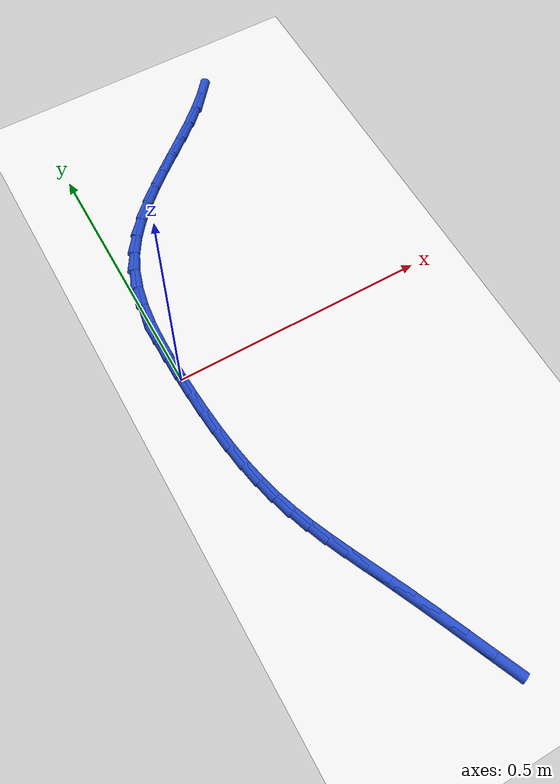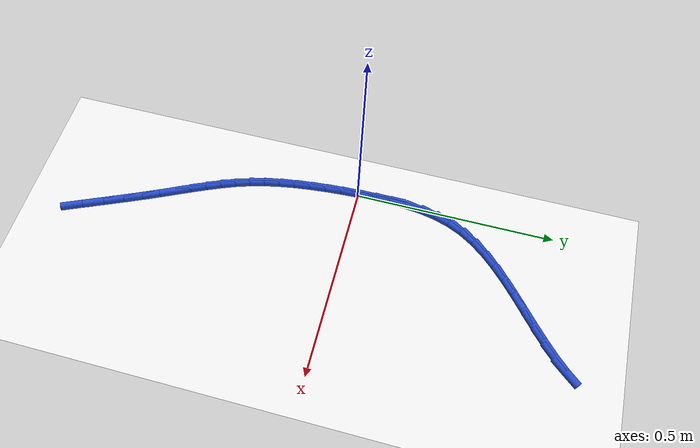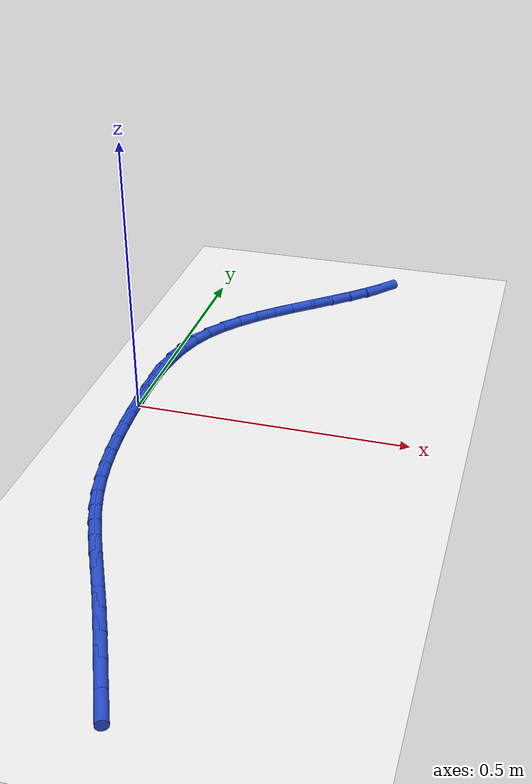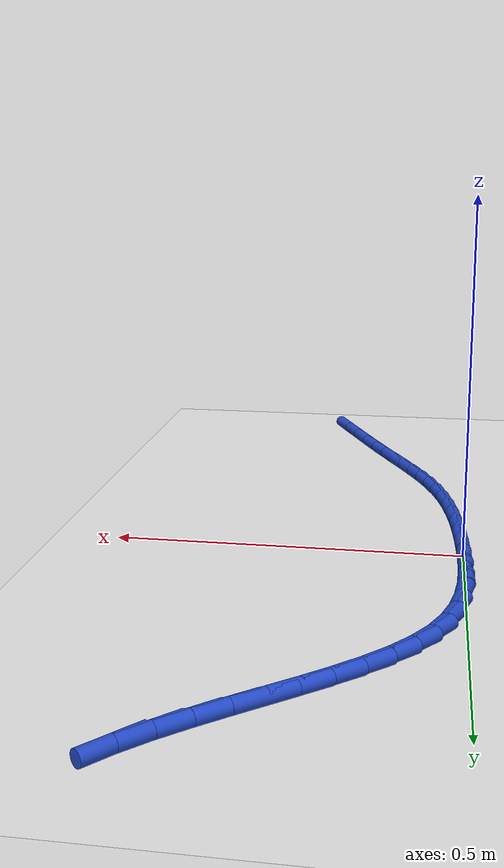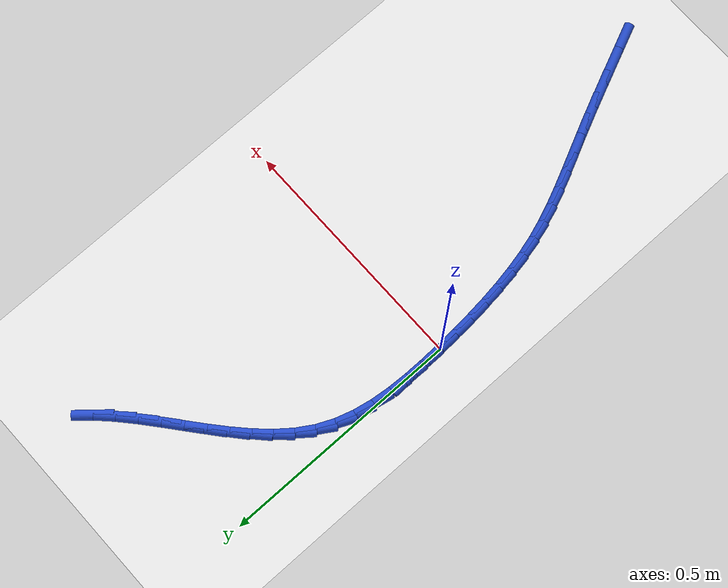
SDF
<sdf version="1.6">
 <world name="default">
  <model name="ground_plane">
   <static>1</static>
   <link name="link">
    <collision name="collision">
     <geometry><plane><normal>0 0 1</normal><size>100 100</size></plane></geometry>
     <surface><friction><ode><mu>100</mu><mu2>50</mu2></ode></friction></surface>
    </collision>
    <visual name="visual">
     <cast_shadows>0</cast_shadows>
     <geometry><plane><normal>0 0 1</normal><size>100 100</size></plane></geometry>
     <material>
      <script><uri>file://media/materials/scripts/gazebo.material</uri><name>Gazebo/WhiteGlow</name></script>
     </material>
    </visual>
   </link>
  </model>
  <model name="line">
   <link name="link_0">
    <pose>8.876905287225068e-18 -3.469446951953614e-17 0.01 0 1.57 -1.5388181777335797</pose>
    <collision name="collision">
     <geometry><cylinder><radius>0.01</radius><length>0.08</length></cylinder></geometry>
    </collision>
    <visual name="visual">
     <material>
      <script><name>Gazebo/Blue</name><uri>file://media/materials/scripts/gazebo.material</uri></script>
     </material>
     <geometry><cylinder><radius>0.01</radius><length>0.08</length></cylinder></geometry>
    </visual>
   </link>
   <link name="link_1">
    <pose>-0.0013342330816965733 0.041709051128966085 0.01 0 1.57 -1.5698637900432821</pose>
    <collision name="collision">
     <geometry><cylinder><radius>0.01</radius><length>0.08</length></cylinder></geometry>
    </collision>
    <visual name="visual">
     <material>
      <script><name>Gazebo/Blue</name><uri>file://media/materials/scripts/gazebo.material</uri></script>
     </material>
     <geometry><cylinder><radius>0.01</radius><length>0.08</length></cylinder></geometry>
    </visual>
   </link>
   <link name="link_2">
    <pose>-0.0013729636116146375 0.0832414825575409 0.01 0 1.57 1.5245017664246117</pose>
    <collision name="collision">
     <geometry><cylinder><radius>0.01</radius><length>0.08</length></cylinder></geometry>
    </collision>
    <visual name="visual">
     <material>
      <script><name>Gazebo/Blue</name><uri>file://media/materials/scripts/gazebo.material</uri></script>
     </material>
     <geometry><cylinder><radius>0.01</radius><length>0.08</length></cylinder></geometry>
    </visual>
   </link>
   <link name="link_3">
    <pose>0.0005268423543587468 0.12424950907540658 0.01 0 1.57 1.459601645572316</pose>
    <collision name="collision">
     <geometry><cylinder><radius>0.01</radius><length>0.08</length></cylinder></geometry>
    </collision>
    <visual name="visual">
     <material>
      <script><name>Gazebo/Blue</name><uri>file://media/materials/scripts/gazebo.material</uri></script>
     </material>
     <geometry><cylinder><radius>0.01</radius><length>0.08</length></cylinder></geometry>
    </visual>
   </link>
   <link name="link_4">
    <pose>0.005008218760336513 0.16438534547224498 0.01 0 1.57 1.3753087487566449</pose>
    <collision name="collision">
     <geometry><cylinder><radius>0.01</radius><length>0.08</length></cylinder></geometry>
    </collision>
    <visual name="visual">
     <material>
      <script><name>Gazebo/Blue</name><uri>file://media/materials/scripts/gazebo.material</uri></script>
     </material>
     <geometry><cylinder><radius>0.01</radius><length>0.08</length></cylinder></geometry>
    </visual>
   </link>
   <link name="link_5">
    <pose>0.012714199550431595 0.20330120653773837 0.01 0 1.57 1.2702955046169055</pose>
    <collision name="collision">
     <geometry><cylinder><radius>0.01</radius><length>0.08</length></cylinder></geometry>
    </collision>
    <visual name="visual">
     <material>
      <script><name>Gazebo/Blue</name><uri>file://media/materials/scripts/gazebo.material</uri></script>
     </material>
     <geometry><cylinder><radius>0.01</radius><length>0.08</length></cylinder></geometry>
    </visual>
   </link>
   <link name="link_6">
    <pose>0.024287818668756934 0.24064930706156876 0.01 0 1.57 1.1447108239115833</pose>
    <collision name="collision">
     <geometry><cylinder><radius>0.01</radius><length>0.08</length></cylinder></geometry>
    </collision>
    <visual name="visual">
     <material>
      <script><name>Gazebo/Blue</name><uri>file://media/materials/scripts/gazebo.material</uri></script>
     </material>
     <geometry><cylinder><radius>0.01</radius><length>0.08</length></cylinder></geometry>
    </visual>
   </link>
   <link name="link_7">
    <pose>0.040370669185493216 0.2760825447835628 0.01 0 1.57 1.0122751202134297</pose>
    <collision name="collision">
     <geometry><cylinder><radius>0.01</radius><length>0.08</length></cylinder></geometry>
    </collision>
    <visual name="visual">
     <material>
      <script><name>Gazebo/Blue</name><uri>file://media/materials/scripts/gazebo.material</uri></script>
     </material>
     <geometry><cylinder><radius>0.01</radius><length>0.08</length></cylinder></geometry>
    </visual>
   </link>
   <link name="link_8">
    <pose>0.061214560871536434 0.3094385682081376 0.01 0 1.57 0.9018552316565003</pose>
    <collision name="collision">
     <geometry><cylinder><radius>0.01</radius><length>0.08</length></cylinder></geometry>
    </collision>
    <visual name="visual">
     <material>
      <script><name>Gazebo/Blue</name><uri>file://media/materials/scripts/gazebo.material</uri></script>
     </material>
     <geometry><cylinder><radius>0.01</radius><length>0.08</length></cylinder></geometry>
    </visual>
   </link>
   <link name="link_9">
    <pose>0.08615605962513373 0.34098883612755043 0.01 0 1.57 0.8168288669703682</pose>
    <collision name="collision">
     <geometry><cylinder><radius>0.01</radius><length>0.08</length></cylinder></geometry>
    </collision>
    <visual name="visual">
     <material>
      <script><name>Gazebo/Blue</name><uri>file://media/materials/scripts/gazebo.material</uri></script>
     </material>
     <geometry><cylinder><radius>0.01</radius><length>0.08</length></cylinder></geometry>
    </visual>
   </link>
   <link name="link_10">
    <pose>0.11440050513459779 0.371067006362761 0.01 0 1.57 0.755035127044355</pose>
    <collision name="collision">
     <geometry><cylinder><radius>0.01</radius><length>0.08</length></cylinder></geometry>
    </collision>
    <visual name="visual">
     <material>
      <script><name>Gazebo/Blue</name><uri>file://media/materials/scripts/gazebo.material</uri></script>
     </material>
     <geometry><cylinder><radius>0.01</radius><length>0.08</length></cylinder></geometry>
    </visual>
   </link>
   <link name="link_11">
    <pose>0.1451532370882413 0.4000067367347282 0.01 0 1.57 0.7140456324286072</pose>
    <collision name="collision">
     <geometry><cylinder><radius>0.01</radius><length>0.08</length></cylinder></geometry>
    </collision>
    <visual name="visual">
     <material>
      <script><name>Gazebo/Blue</name><uri>file://media/materials/scripts/gazebo.material</uri></script>
     </material>
     <geometry><cylinder><radius>0.01</radius><length>0.08</length></cylinder></geometry>
    </visual>
   </link>
   <link name="link_12">
    <pose>0.17761959517437706 0.42814168506441186 0.01 0 1.57 0.6919515488639092</pose>
    <collision name="collision">
     <geometry><cylinder><radius>0.01</radius><length>0.08</length></cylinder></geometry>
    </collision>
    <visual name="visual">
     <material>
      <script><name>Gazebo/Blue</name><uri>file://media/materials/scripts/gazebo.material</uri></script>
     </material>
     <geometry><cylinder><radius>0.01</radius><length>0.08</length></cylinder></geometry>
    </visual>
   </link>
   <link name="link_13">
    <pose>0.21100491908131758 0.45580550917277074 0.01 0 1.57 0.6876817813719777</pose>
    <collision name="collision">
     <geometry><cylinder><radius>0.01</radius><length>0.08</length></cylinder></geometry>
    </collision>
    <visual name="visual">
     <material>
      <script><name>Gazebo/Blue</name><uri>file://media/materials/scripts/gazebo.material</uri></script>
     </material>
     <geometry><cylinder><radius>0.01</radius><length>0.08</length></cylinder></geometry>
    </visual>
   </link>
   <link name="link_14">
    <pose>0.24451454849737567 0.4833318668807645 0.01 0 1.57 0.7011106968436897</pose>
    <collision name="collision">
     <geometry><cylinder><radius>0.01</radius><length>0.08</length></cylinder></geometry>
    </collision>
    <visual name="visual">
     <material>
      <script><name>Gazebo/Blue</name><uri>file://media/materials/scripts/gazebo.material</uri></script>
     </material>
     <geometry><cylinder><radius>0.01</radius><length>0.08</length></cylinder></geometry>
    </visual>
   </link>
   <link name="link_15">
    <pose>0.27735382311086404 0.5110544160093524 0.01 0 1.57 0.7330891234743963</pose>
    <collision name="collision">
     <geometry><cylinder><radius>0.01</radius><length>0.08</length></cylinder></geometry>
    </collision>
    <visual name="visual">
     <material>
      <script><name>Gazebo/Blue</name><uri>file://media/materials/scripts/gazebo.material</uri></script>
     </material>
     <geometry><cylinder><radius>0.01</radius><length>0.08</length></cylinder></geometry>
    </visual>
   </link>
   <link name="link_16">
    <pose>0.3087280826100953 0.5393068143794939 0.01 0 1.57 0.7854208552789375</pose>
    <collision name="collision">
     <geometry><cylinder><radius>0.01</radius><length>0.08</length></cylinder></geometry>
    </collision>
    <visual name="visual">
     <material>
      <script><name>Gazebo/Blue</name><uri>file://media/materials/scripts/gazebo.material</uri></script>
     </material>
     <geometry><cylinder><radius>0.01</radius><length>0.08</length></cylinder></geometry>
    </visual>
   </link>
   <link name="link_17">
    <pose>0.3378426666833825 0.5684227198121482 0.01 0 1.57 0.8606958675477416</pose>
    <collision name="collision">
     <geometry><cylinder><radius>0.01</radius><length>0.08</length></cylinder></geometry>
    </collision>
    <visual name="visual">
     <material>
      <script><name>Gazebo/Blue</name><uri>file://media/materials/scripts/gazebo.material</uri></script>
     </material>
     <geometry><cylinder><radius>0.01</radius><length>0.08</length></cylinder></geometry>
    </visual>
   </link>
   <link name="link_213">
    <pose>0.21765844753347713 -0.6805759060587498 0.01 0 1.57 -1.1533981997281053</pose>
    <collision name="collision">
     <geometry><cylinder><radius>0.01</radius><length>0.08</length></cylinder></geometry>
    </collision>
    <visual name="visual">
     <material>
      <script><name>Gazebo/Blue</name><uri>file://media/materials/scripts/gazebo.material</uri></script>
     </material>
     <geometry><cylinder><radius>0.01</radius><length>0.08</length></cylinder></geometry>
    </visual>
   </link>
   <link name="link_214">
    <pose>0.1953098802108739 -0.6301794803945244 0.01 0 1.57 -1.1528274873108635</pose>
    <collision name="collision">
     <geometry><cylinder><radius>0.01</radius><length>0.08</length></cylinder></geometry>
    </collision>
    <visual name="visual">
     <material>
      <script><name>Gazebo/Blue</name><uri>file://media/materials/scripts/gazebo.material</uri></script>
     </material>
     <geometry><cylinder><radius>0.01</radius><length>0.08</length></cylinder></geometry>
    </visual>
   </link>
   <link name="link_215">
    <pose>0.17372023329810138 -0.5815693152137218 0.01 0 1.57 -1.1466568990709975</pose>
    <collision name="collision">
     <geometry><cylinder><radius>0.01</radius><length>0.08</length></cylinder></geometry>
    </collision>
    <visual name="visual">
     <material>
      <script><name>Gazebo/Blue</name><uri>file://media/materials/scripts/gazebo.material</uri></script>
     </material>
     <geometry><cylinder><radius>0.01</radius><length>0.08</length></cylinder></geometry>
    </visual>
   </link>
   <link name="link_216">
    <pose>0.1529331443218194 -0.5355340137523574 0.01 0 1.57 -1.134331305144055</pose>
    <collision name="collision">
     <geometry><cylinder><radius>0.01</radius><length>0.08</length></cylinder></geometry>
    </collision>
    <visual name="visual">
     <material>
      <script><name>Gazebo/Blue</name><uri>file://media/materials/scripts/gazebo.material</uri></script>
     </material>
     <geometry><cylinder><radius>0.01</radius><length>0.08</length></cylinder></geometry>
    </visual>
   </link>
   <link name="link_217">
    <pose>0.13299707563673646 -0.4927957852483732 0.01 0 1.57 -1.1238049257996725</pose>
    <collision name="collision">
     <geometry><cylinder><radius>0.01</radius><length>0.08</length></cylinder></geometry>
    </collision>
    <visual name="visual">
     <material>
      <script><name>Gazebo/Blue</name><uri>file://media/materials/scripts/gazebo.material</uri></script>
     </material>
     <geometry><cylinder><radius>0.01</radius><length>0.08</length></cylinder></geometry>
    </visual>
   </link>
   <link name="link_218">
    <pose>0.114023239542868 -0.4532133429344044 0.01 0 1.57 -1.122970492496087</pose>
    <collision name="collision">
     <geometry><cylinder><radius>0.01</radius><length>0.08</length></cylinder></geometry>
    </collision>
    <visual name="visual">
     <material>
      <script><name>Gazebo/Blue</name><uri>file://media/materials/scripts/gazebo.material</uri></script>
     </material>
     <geometry><cylinder><radius>0.01</radius><length>0.08</length></cylinder></geometry>
    </visual>
   </link>
   <link name="link_219">
    <pose>0.09616673754687556 -0.4160414448614475 0.01 0 1.57 -1.1339926582336366</pose>
    <collision name="collision">
     <geometry><cylinder><radius>0.01</radius><length>0.08</length></cylinder></geometry>
    </collision>
    <visual name="visual">
     <material>
      <script><name>Gazebo/Blue</name><uri>file://media/materials/scripts/gazebo.material</uri></script>
     </material>
     <geometry><cylinder><radius>0.01</radius><length>0.08</length></cylinder></geometry>
    </visual>
   </link>
   <link name="link_220">
    <pose>0.07958357206261395 -0.3805224517826623 0.01 0 1.57 -1.1582417556736748</pose>
    <collision name="collision">
     <geometry><cylinder><radius>0.01</radius><length>0.08</length></cylinder></geometry>
    </collision>
    <visual name="visual">
     <material>
      <script><name>Gazebo/Blue</name><uri>file://media/materials/scripts/gazebo.material</uri></script>
     </material>
     <geometry><cylinder><radius>0.01</radius><length>0.08</length></cylinder></geometry>
    </visual>
   </link>
   <link name="link_221">
    <pose>0.06442974550393667 -0.34589872445120573 0.01 0 1.57 -1.195951009928722</pose>
    <collision name="collision">
     <geometry><cylinder><radius>0.01</radius><length>0.08</length></cylinder></geometry>
    </collision>
    <visual name="visual">
     <material>
      <script><name>Gazebo/Blue</name><uri>file://media/materials/scripts/gazebo.material</uri></script>
     </material>
     <geometry><cylinder><radius>0.01</radius><length>0.08</length></cylinder></geometry>
    </visual>
   </link>
   <link name="link_222">
    <pose>0.05086126028469761 -0.3114126236202356 0.01 0 1.57 -1.24584198229577</pose>
    <collision name="collision">
     <geometry><cylinder><radius>0.01</radius><length>0.08</length></cylinder></geometry>
    </collision>
    <visual name="visual">
     <material>
      <script><name>Gazebo/Blue</name><uri>file://media/materials/scripts/gazebo.material</uri></script>
     </material>
     <geometry><cylinder><radius>0.01</radius><length>0.08</length></cylinder></geometry>
    </visual>
   </link>
   <link name="link_223">
    <pose>0.03903411881875045 -0.2763065100429088 0.01 0 1.57 -1.303656349290732</pose>
    <collision name="collision">
     <geometry><cylinder><radius>0.01</radius><length>0.08</length></cylinder></geometry>
    </collision>
    <visual name="visual">
     <material>
      <script><name>Gazebo/Blue</name><uri>file://media/materials/scripts/gazebo.material</uri></script>
     </material>
     <geometry><cylinder><radius>0.01</radius><length>0.08</length></cylinder></geometry>
    </visual>
   </link>
   <link name="link_224">
    <pose>0.029073039227630874 -0.2399098941204793 0.01 0 1.57 -1.3571904900268226</pose>
    <collision name="collision">
     <geometry><cylinder><radius>0.01</radius><length>0.08</length></cylinder></geometry>
    </collision>
    <visual name="visual">
     <material>
      <script><name>Gazebo/Blue</name><uri>file://media/materials/scripts/gazebo.material</uri></script>
     </material>
     <geometry><cylinder><radius>0.01</radius><length>0.08</length></cylinder></geometry>
    </visual>
   </link>
   <link name="link_225">
    <pose>0.020884545745621676 -0.20216011590546912 0.01 0 1.57 -1.402701908507376</pose>
    <collision name="collision">
     <geometry><cylinder><radius>0.01</radius><length>0.08</length></cylinder></geometry>
    </collision>
    <visual name="visual">
     <material>
      <script><name>Gazebo/Blue</name><uri>file://media/materials/scripts/gazebo.material</uri></script>
     </material>
     <geometry><cylinder><radius>0.01</radius><length>0.08</length></cylinder></geometry>
    </visual>
   </link>
   <link name="link_226">
    <pose>0.014282238375772659 -0.1632533774367579 0.01 0 1.57 -1.4410227254520813</pose>
    <collision name="collision">
     <geometry><cylinder><radius>0.01</radius><length>0.08</length></cylinder></geometry>
    </collision>
    <visual name="visual">
     <material>
      <script><name>Gazebo/Blue</name><uri>file://media/materials/scripts/gazebo.material</uri></script>
     </material>
     <geometry><cylinder><radius>0.01</radius><length>0.08</length></cylinder></geometry>
    </visual>
   </link>
   <link name="link_227">
    <pose>0.00907937361718491 -0.12338683766310068 0.01 0 1.57 -1.4729009056621887</pose>
    <collision name="collision">
     <geometry><cylinder><radius>0.01</radius><length>0.08</length></cylinder></geometry>
    </collision>
    <visual name="visual">
     <material>
      <script><name>Gazebo/Blue</name><uri>file://media/materials/scripts/gazebo.material</uri></script>
     </material>
     <geometry><cylinder><radius>0.01</radius><length>0.08</length></cylinder></geometry>
    </visual>
   </link>
   <link name="link_228">
    <pose>0.005089207968959412 -0.08275765553325112 0.01 0 1.57 -1.498963969005727</pose>
    <collision name="collision">
     <geometry><cylinder><radius>0.01</radius><length>0.08</length></cylinder></geometry>
    </collision>
    <visual name="visual">
     <material>
      <script><name>Gazebo/Blue</name><uri>file://media/materials/scripts/gazebo.material</uri></script>
     </material>
     <geometry><cylinder><radius>0.01</radius><length>0.08</length></cylinder></geometry>
    </visual>
   </link>
   <link name="link_229">
    <pose>0.0021249979301974533 -0.04156298999596625 0.01 0 1.57 -1.519713638650517</pose>
    <collision name="collision">
     <geometry><cylinder><radius>0.01</radius><length>0.08</length></cylinder></geometry>
    </collision>
    <visual name="visual">
     <material>
      <script><name>Gazebo/Blue</name><uri>file://media/materials/scripts/gazebo.material</uri></script>
     </material>
     <geometry><cylinder><radius>0.01</radius><length>0.08</length></cylinder></geometry>
    </visual>
   </link>
   <link name="link_230">
    <pose>-7.223496974184673e-18 1.734723475976807e-16 0.01 0 1.57 -1.5355274038750344</pose>
    <collision name="collision">
     <geometry><cylinder><radius>0.01</radius><length>0.08</length></cylinder></geometry>
    </collision>
    <visual name="visual">
     <material>
      <script><name>Gazebo/Blue</name><uri>file://media/materials/scripts/gazebo.material</uri></script>
     </material>
     <geometry><cylinder><radius>0.01</radius><length>0.08</length></cylinder></geometry>
    </visual>
   </link>
   <link name="link_231">
    <pose>-0.00147252932253189 0.04173415550589323 0.01 0 1.57 -1.5466617526980606</pose>
    <collision name="collision">
     <geometry><cylinder><radius>0.01</radius><length>0.08</length></cylinder></geometry>
    </collision>
    <visual name="visual">
     <material>
      <script><name>Gazebo/Blue</name><uri>file://media/materials/scripts/gazebo.material</uri></script>
     </material>
     <geometry><cylinder><radius>0.01</radius><length>0.08</length></cylinder></geometry>
    </visual>
   </link>
   <link name="link_232">
    <pose>-0.0024793335382971146 0.08344231757295807 0.01 0 1.57 -1.5410919231678337</pose>
    <collision name="collision">
     <geometry><cylinder><radius>0.01</radius><length>0.08</length></cylinder></geometry>
    </collision>
    <visual name="visual">
     <material>
      <script><name>Gazebo/Blue</name><uri>file://media/materials/scripts/gazebo.material</uri></script>
     </material>
     <geometry><cylinder><radius>0.01</radius><length>0.08</length></cylinder></geometry>
    </visual>
   </link>
  </model>
 </world>
</sdf>
